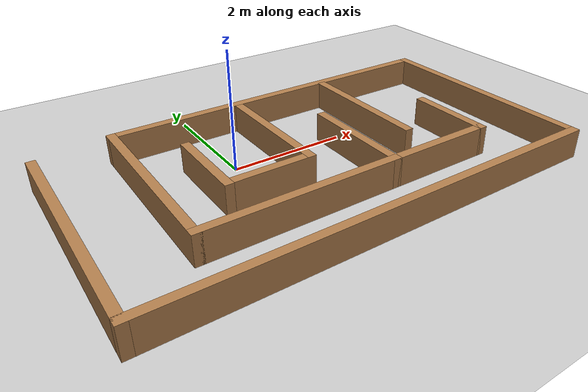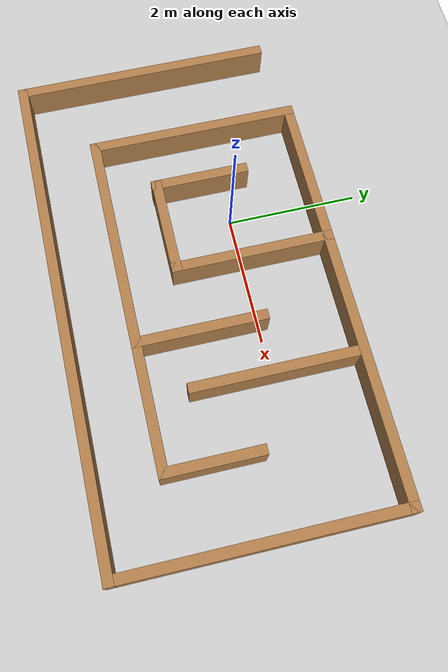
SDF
<sdf version="1.4">
  <world name="default">

    <scene>
      <ambient>0.4 0.4 0.4 1</ambient>
      <background>0.7 0.7 0.7 1</background>
      <shadows>true</shadows>
    </scene>

    <!-- A global light source -->
    <include>
      <uri>model://sun</uri>
    </include>

    <!-- A ground plane -->
    <include>
      <uri>model://ground_plane</uri>
    </include>

    <!-- my maze -->
    <include>
      <uri>model://labirinto</uri>
    </include>

    <physics type="ode">
      <real_time_update_rate>1000.0</real_time_update_rate>
      <max_step_size>0.001</max_step_size>
      <real_time_factor>1</real_time_factor>
      <ode>
        <solver>
          <type>quick</type>
          <iters>150</iters>
          <precon_iters>0</precon_iters>
          <sor>1.400000</sor>
          <use_dynamic_moi_rescaling>1</use_dynamic_moi_rescaling>
        </solver>
        <constraints>
          <cfm>0.00001</cfm>
          <erp>0.2</erp>
          <contact_max_correcting_vel>2000.000000</contact_max_correcting_vel>
          <contact_surface_layer>0.01000</contact_surface_layer>
        </constraints>
      </ode>
    </physics>
  </world>

</sdf>

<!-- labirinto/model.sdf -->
<sdf version='1.6'>
  <model name='labirinto'>
    <pose frame=''>1 -0.725 0 0 -0 0</pose>
    <link name='Wall_0'>
      <collision name='Wall_0_Collision'>
        <geometry>
          <box>
            <size>6.4 0.15 0.5</size>
          </box>
        </geometry>
        <pose frame=''>0 0 0.25 0 -0 0</pose>
      </collision>
      <visual name='Wall_0_Visual'>
        <pose frame=''>0 0 0.25 0 -0 0</pose>
        <geometry>
          <box>
            <size>6.4 0.15 0.5</size>
          </box>
        </geometry>
        <material>
          <script>
            <uri>file://media/materials/scripts/gazebo.material</uri>
            <name>Gazebo/Wood</name>
          </script>
          <ambient>1 1 1 1</ambient>
        </material>
        <meta>
          <layer>0</layer>
        </meta>
      </visual>
      <pose frame=''>0.625 2.025 0 0 -0 0</pose>
    </link>
    <link name='Wall_1'>
      <collision name='Wall_1_Collision'>
        <geometry>
          <box>
            <size>4.2 0.15 0.5</size>
          </box>
        </geometry>
        <pose frame=''>0 0 0.25 0 -0 0</pose>
      </collision>
      <visual name='Wall_1_Visual'>
        <pose frame=''>0 0 0.25 0 -0 0</pose>
        <geometry>
          <box>
            <size>4.2 0.15 0.5</size>
          </box>
        </geometry>
        <material>
          <script>
            <uri>file://media/materials/scripts/gazebo.material</uri>
            <name>Gazebo/Wood</name>
          </script>
          <ambient>1 1 1 1</ambient>
        </material>
        <meta>
          <layer>0</layer>
        </meta>
      </visual>
      <pose frame=''>3.75 0 0 0 -0 -1.5708</pose>
    </link>
    <link name='Wall_10'>
      <collision name='Wall_10_Collision'>
        <geometry>
          <box>
            <size>3.4 0.15 0.5</size>
          </box>
        </geometry>
        <pose frame=''>0 0 0.25 0 -0 0</pose>
      </collision>
      <visual name='Wall_10_Visual'>
        <pose frame=''>0 0 0.25 0 -0 0</pose>
        <geometry>
          <box>
            <size>3.4 0.15 0.5</size>
          </box>
        </geometry>
        <material>
          <script>
            <uri>file://media/materials/scripts/gazebo.material</uri>
            <name>Gazebo/Wood</name>
          </script>
          <ambient>1 1 1 1</ambient>
        </material>
        <meta>
          <layer>0</layer>
        </meta>
      </visual>
      <pose frame=''>-0.875 -1.075 0 0 -0 0</pose>
    </link>
    <link name='Wall_11'>
      <collision name='Wall_11_Collision'>
        <geometry>
          <box>
            <size>2 0.15 0.5</size>
          </box>
        </geometry>
        <pose frame=''>0 0 0.25 0 -0 0</pose>
      </collision>
      <visual name='Wall_11_Visual'>
        <pose frame=''>0 0 0.25 0 -0 0</pose>
        <geometry>
          <box>
            <size>2 0.15 0.5</size>
          </box>
        </geometry>
        <material>
          <script>
            <uri>file://media/materials/scripts/gazebo.material</uri>
            <name>Gazebo/Wood</name>
          </script>
          <ambient>1 1 1 1</ambient>
        </material>
        <meta>
          <layer>0</layer>
        </meta>
      </visual>
      <pose frame=''>0.75 -0.15 0 0 -0 1.5708</pose>
    </link>
    <link name='Wall_14'>
      <collision name='Wall_14_Collision'>
        <geometry>
          <box>
            <size>2.5 0.15 0.5</size>
          </box>
        </geometry>
        <pose frame=''>0 0 0.25 0 -0 0</pose>
      </collision>
      <visual name='Wall_14_Visual'>
        <pose frame=''>0 0 0.25 0 -0 0</pose>
        <geometry>
          <box>
            <size>2.5 0.15 0.5</size>
          </box>
        </geometry>
        <material>
          <script>
            <uri>file://media/materials/scripts/gazebo.material</uri>
            <name>Gazebo/Wood</name>
          </script>
          <ambient>1 1 1 1</ambient>
        </material>
        <meta>
          <layer>0</layer>
        </meta>
      </visual>
      <pose frame=''>1.55898 0.741587 0 0 -0 -1.5708</pose>
    </link>
    <link name='Wall_16'>
      <collision name='Wall_16_Collision'>
        <geometry>
          <box>
            <size>1.5 0.15 0.5</size>
          </box>
        </geometry>
        <pose frame=''>0 0 0.25 0 -0 0</pose>
      </collision>
      <visual name='Wall_16_Visual'>
        <pose frame=''>0 0 0.25 0 -0 0</pose>
        <geometry>
          <box>
            <size>1.5 0.15 0.5</size>
          </box>
        </geometry>
        <material>
          <script>
            <uri>file://media/materials/scripts/gazebo.material</uri>
            <name>Gazebo/Wood</name>
          </script>
          <ambient>1 1 1 1</ambient>
        </material>
        <meta>
          <layer>0</layer>
        </meta>
      </visual>
      <pose frame=''>-1.64155 0.390601 0 0 -0 -1.5708</pose>
    </link>
    <link name='Wall_18'>
      <collision name='Wall_18_Collision'>
        <geometry>
          <box>
            <size>2.45 0.15 0.5</size>
          </box>
        </geometry>
        <pose frame=''>0 0 0.25 0 -0 0</pose>
      </collision>
      <visual name='Wall_18_Visual'>
        <pose frame=''>0 0 0.25 0 -0 0</pose>
        <geometry>
          <box>
            <size>2.45 0.15 0.5</size>
          </box>
        </geometry>
        <material>
          <script>
            <uri>file://media/materials/scripts/gazebo.material</uri>
            <name>Gazebo/Wood</name>
          </script>
          <ambient>1 1 1 1</ambient>
        </material>
        <meta>
          <layer>0</layer>
        </meta>
      </visual>
      <pose frame=''>-0.25 0.875 0 0 -0 -1.5708</pose>
    </link>
    <link name='Wall_19'>
      <collision name='Wall_19_Collision'>
        <geometry>
          <box>
            <size>1.53057 0.15 0.5</size>
          </box>
        </geometry>
        <pose frame=''>0 0 0.25 0 -0 0</pose>
      </collision>
      <visual name='Wall_19_Visual'>
        <pose frame=''>0 0 0.25 0 -0 0</pose>
        <geometry>
          <box>
            <size>1.53057 0.15 0.5</size>
          </box>
        </geometry>
        <material>
          <script>
            <uri>file://media/materials/scripts/gazebo.material</uri>
            <name>Gazebo/Wood</name>
          </script>
          <ambient>1 1 1 1</ambient>
        </material>
        <meta>
          <layer>0</layer>
        </meta>
      </visual>
      <pose frame=''>-0.9405 -0.275 0 0 -0 3.14159</pose>
    </link>
    <link name='Wall_2'>
      <collision name='Wall_2_Collision'>
        <geometry>
          <box>
            <size>7.65 0.15 0.5</size>
          </box>
        </geometry>
        <pose frame=''>0 0 0.25 0 -0 0</pose>
      </collision>
      <visual name='Wall_2_Visual'>
        <pose frame=''>0 0 0.25 0 -0 0</pose>
        <geometry>
          <box>
            <size>7.65 0.15 0.5</size>
          </box>
        </geometry>
        <material>
          <script>
            <uri>file://media/materials/scripts/gazebo.material</uri>
            <name>Gazebo/Wood</name>
          </script>
          <ambient>1 1 1 1</ambient>
        </material>
        <meta>
          <layer>0</layer>
        </meta>
      </visual>
      <pose frame=''>0 -2.025 0 0 -0 3.14159</pose>
    </link>
    <link name='Wall_22'>
      <collision name='Wall_22_Collision'>
        <geometry>
          <box>
            <size>2 0.15 0.5</size>
          </box>
        </geometry>
        <pose frame=''>0 0 0.25 0 -0 0</pose>
      </collision>
      <visual name='Wall_22_Visual'>
        <pose frame=''>0 0 0.25 0 -0 0</pose>
        <geometry>
          <box>
            <size>2 0.15 0.5</size>
          </box>
        </geometry>
        <material>
          <script>
            <uri>file://media/materials/scripts/gazebo.material</uri>
            <name>Gazebo/Wood</name>
          </script>
          <ambient>1 1 1 1</ambient>
        </material>
        <meta>
          <layer>0</layer>
        </meta>
      </visual>
      <pose frame=''>1.675 -1.075 0 0 -0 0</pose>
    </link>
    <link name='Wall_23'>
      <collision name='Wall_23_Collision'>
        <geometry>
          <box>
            <size>1.5 0.15 0.5</size>
          </box>
        </geometry>
        <pose frame=''>0 0 0.25 0 -0 0</pose>
      </collision>
      <visual name='Wall_23_Visual'>
        <pose frame=''>0 0 0.25 0 -0 0</pose>
        <geometry>
          <box>
            <size>1.5 0.15 0.5</size>
          </box>
        </geometry>
        <material>
          <script>
            <uri>file://media/materials/scripts/gazebo.material</uri>
            <name>Gazebo/Wood</name>
          </script>
          <ambient>1 1 1 1</ambient>
        </material>
        <meta>
          <layer>0</layer>
        </meta>
      </visual>
      <pose frame=''>2.6 -0.4 0 0 -0 1.5708</pose>
    </link>
    <link name='Wall_3'>
      <collision name='Wall_3_Collision'>
        <geometry>
          <box>
            <size>4 0.15 0.5</size>
          </box>
        </geometry>
        <pose frame=''>0 0 0.25 0 -0 0</pose>
      </collision>
      <visual name='Wall_3_Visual'>
        <pose frame=''>0 0 0.25 0 -0 0</pose>
        <geometry>
          <box>
            <size>4 0.15 0.5</size>
          </box>
        </geometry>
        <material>
          <script>
            <uri>file://media/materials/scripts/gazebo.material</uri>
            <name>Gazebo/Wood</name>
          </script>
          <ambient>1 1 1 1</ambient>
        </material>
        <meta>
          <layer>0</layer>
        </meta>
      </visual>
      <pose frame=''>-3.75 -0.1 0 0 -0 1.5708</pose>
    </link>
    <link name='Wall_9'>
      <collision name='Wall_9_Collision'>
        <geometry>
          <box>
            <size>3.25 0.15 0.5</size>
          </box>
        </geometry>
        <pose frame=''>0 0 0.25 0 -0 0</pose>
      </collision>
      <visual name='Wall_9_Visual'>
        <pose frame=''>0 0 0.25 0 -0 0</pose>
        <geometry>
          <box>
            <size>3.25 0.15 0.5</size>
          </box>
        </geometry>
        <material>
          <script>
            <uri>file://media/materials/scripts/gazebo.material</uri>
            <name>Gazebo/Wood</name>
          </script>
          <ambient>1 1 1 1</ambient>
        </material>
        <meta>
          <layer>0</layer>
        </meta>
      </visual>
      <pose frame=''>-2.5 0.475 0 0 -0 -1.5708</pose>
    </link>
    <static>1</static>
  </model>
</sdf>
